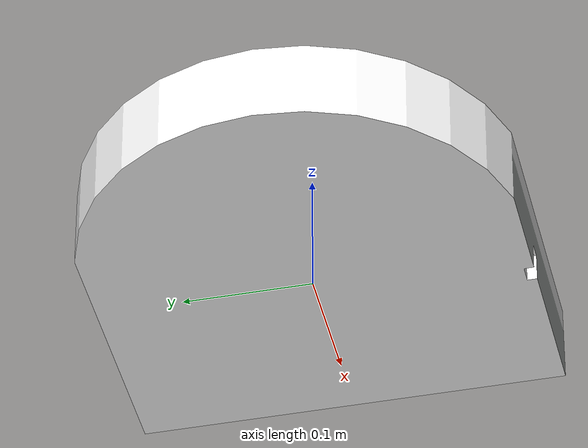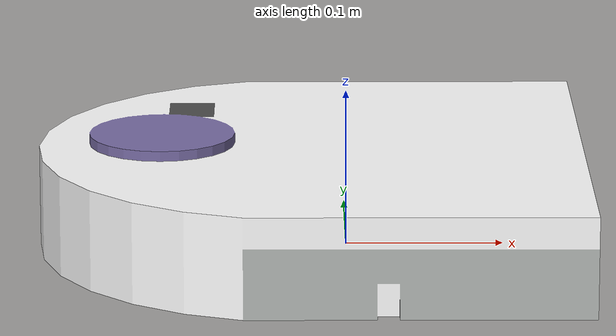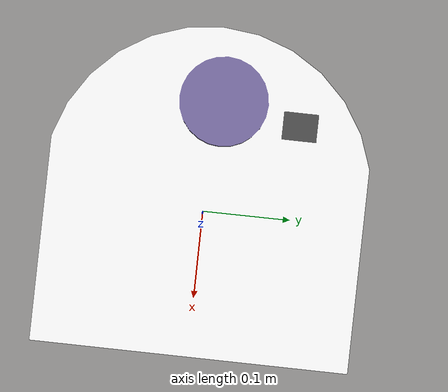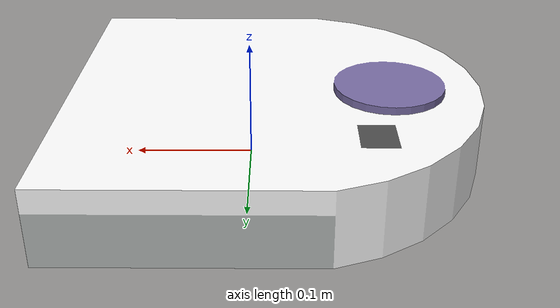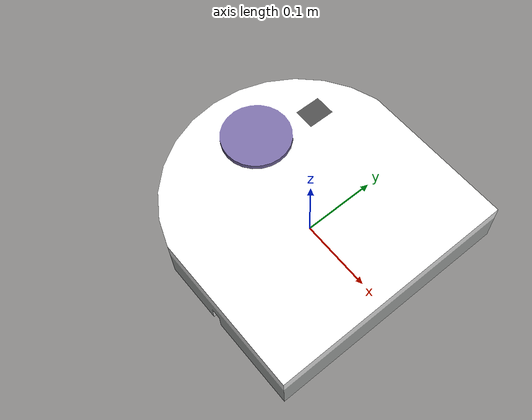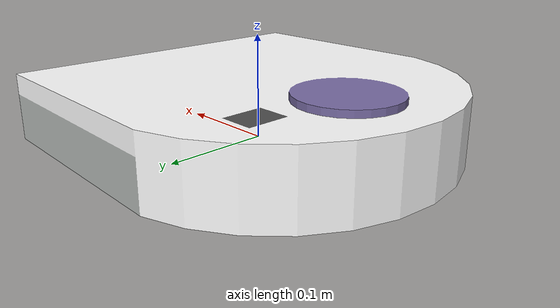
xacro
<?xml version="1.0"?>
<robot xmlns:xacro="http://ros.org/wiki/xacro" name="neato">
    <link name="base_footprint"/>
    <link name="base_link">
      <visual>
        <origin xyz="0.150 -0.165 -0.040" rpy="0 0 1.57" />
        <geometry>
          <mesh filename="package://neato_node/meshes/neato.dae" scale="0.025 0.025 0.025"/>
        </geometry>
      </visual>

    </link>
    <joint name="base_base_footprint" type="fixed">
       <origin xyz="0 0 0.040" rpy="0 0 0" />
       <parent link="base_footprint" />
       <child link="base_link" />

   </joint>

   <link name="base_laser_link" />
   <joint name="laser_to_base" type="fixed">
       <origin xyz="-0.090 0.0 0.037" rpy="0 0 0" />
       <parent link="base_link" />
       <child link="base_laser_link" />

   </joint>

</robot>
